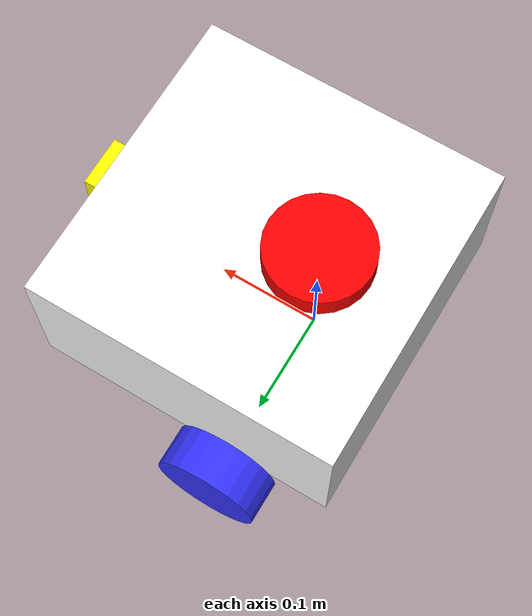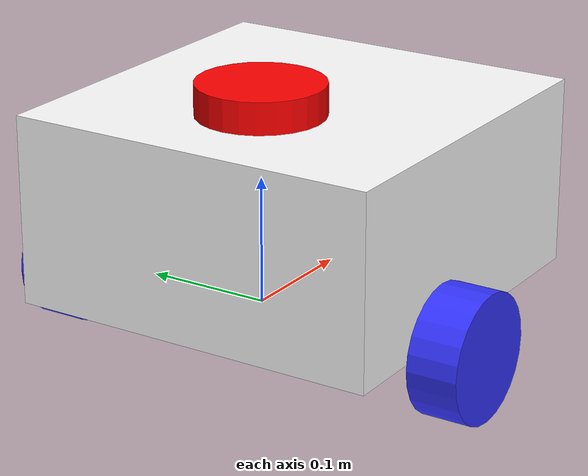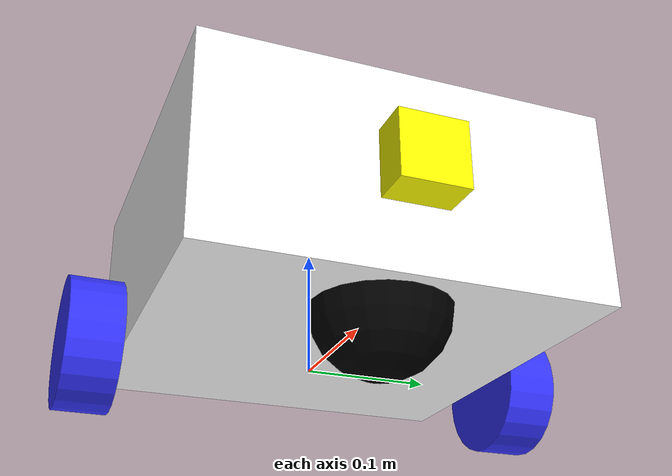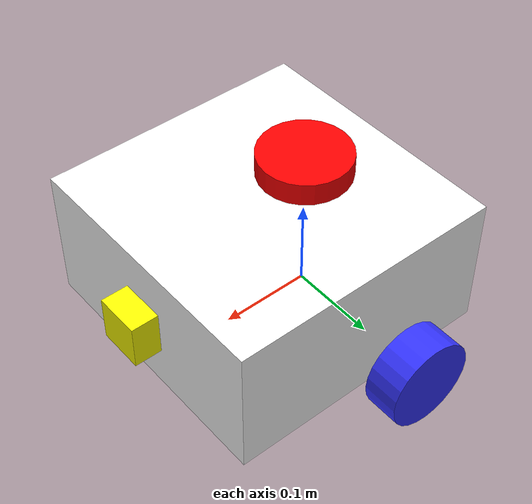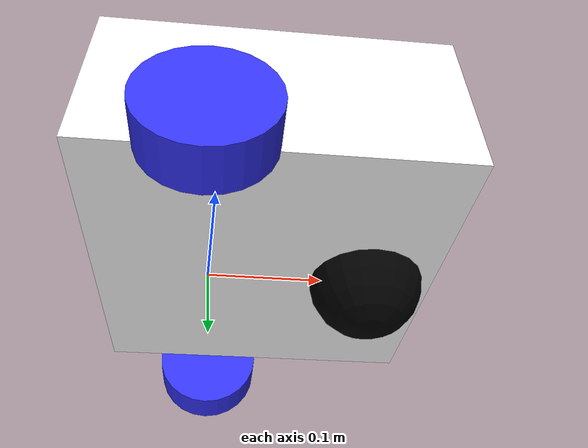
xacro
<?xml version="1.0"?>
<robot xmlns:xacro="http://www.ros.org/wiki/xacro" name="robot">
    <xacro:include filename="colors.xacro" />
    <xacro:include filename="inertial_macros.xacro" />

    <xacro:include filename="robot_core.xacro" />
    <xacro:include filename="lidar.xacro" />
    <xacro:include filename="camera.xacro" />

    <xacro:include filename="gazebo_control.xacro" />
</robot>

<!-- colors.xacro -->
<robot xmlns:xacro="http://www.ros.org/wiki/xacro">

    <material name="white">
        <color rgba="1 1 1 1" />
    </material>

    <material name="orange">
        <color rgba="1 0.3 0.1 1" />
    </material>

    <material name="red">
        <color rgba="1 0 0 1" />
    </material>

    <material name="yellow">
        <color rgba="1 1 0 1" />
    </material>

    <material name="blue">
        <color rgba="0.2 0.2 1 1" />
    </material>

    <material name="black">
        <color rgba="0 0 0 1" />
    </material>
</robot>

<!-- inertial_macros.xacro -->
<robot xmlns:xacro="http://www.ros.org/wiki/xacro">

    <!-- Specify some standard inertial calculations https://en.wikipedia.org/wiki/List_of_moments_of_inertia -->
    <!-- These make use of xacro's mathematical functionality -->

    <xacro:macro name="inertial_sphere" params="mass radius *origin">
        <inertial>
            <xacro:insert_block name="origin" />
            <mass value="${mass}" />
            <inertia ixx="${(2/5) * mass * (radius*radius)}" ixy="0.0" ixz="0.0" iyy="${(2/5) * mass * (radius*radius)}" iyz="0.0" izz="${(2/5) * mass * (radius*radius)}" />
        </inertial>
    </xacro:macro>

    <xacro:macro name="inertial_box" params="mass x y z *origin">
        <inertial>
            <xacro:insert_block name="origin" />
            <mass value="${mass}" />
            <inertia ixx="${(1/12) * mass * (y*y+z*z)}" ixy="0.0" ixz="0.0" iyy="${(1/12) * mass * (x*x+z*z)}" iyz="0.0" izz="${(1/12) * mass * (x*x+y*y)}" />
        </inertial>
    </xacro:macro>

    <xacro:macro name="inertial_cylinder" params="mass length radius *origin">
        <inertial>
            <xacro:insert_block name="origin" />
            <mass value="${mass}" />
            <inertia ixx="${(1/12) * mass * (3*radius*radius + length*length)}" ixy="0.0" ixz="0.0" iyy="${(1/12) * mass * (3*radius*radius + length*length)}" iyz="0.0" izz="${(1/2) * mass * (radius*radius)}" />
        </inertial>
    </xacro:macro>

</robot>

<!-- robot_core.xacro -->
<robot xmlns:xacro="http://www.ros.org/wiki/xacro">

    <link name="base_link"></link>

    <!-- CHASSIS -->
    <xacro:property name="chassis_mass" value="0.5" />
    <xacro:property name="chassis_width" value="0.3" />
    <xacro:property name="chassis_length" value="0.3" />
    <xacro:property name="chassis_height" value="0.15" />

    <joint name="chassis_joint" type="fixed">
        <parent link="base_link" />
        <child link="chassis" />
        <origin xyz="-0.1 0 0" /> <!-- przesuniecie punktu referencyjnego -->

    </joint>

    <link name="chassis">
        <visual>
            <origin xyz="${chassis_width* 0.5} 0 0${chassis_height * 0.5}" rpy="0 0 0" /> <!-- przesuniecie geometrii od punktu referencyjnego, polowa wymiarow jak rzucisz okiem-->
            <geometry>
                <box size="${chassis_width} ${chassis_length} ${chassis_height}" />
            </geometry>
            <material name="white" />
        </visual>

        <collision>
            <origin xyz="0.15 0 0.075" />
            <geometry>
                <box size="${chassis_width} ${chassis_length} ${chassis_height}" />
            </geometry>
        </collision>

        <xacro:inertial_box mass="${chassis_mass}" x="${chassis_width}" y="${chassis_length}" z="${chassis_height}">
            <origin xyz="${chassis_width* 0.5} 0 0${chassis_height * 0.5}" rpy="0 0 0" />
        </xacro:inertial_box>

    </link>

    <!-- gazebo uses different materials/colors than rviz so for correct dispaly requires additional tags -->
    <gazebo reference="chassis">
        <material>Gazebo/White</material>
    </gazebo>

    <!-- WHEELS -->
    <xacro:property name="wheel_mass" value="0.1" />
    <xacro:property name="wheel_length" value="0.04" />
    <xacro:property name="wheel_radius" value="0.05" />

    <!-- LEFT WHEEL -->

    <joint name="left_wheel_joint" type="continuous">
        <parent link="base_link" />
        <child link="left_wheel" />
        <!-- zwroc uwage na kąt, zawsze cylindry obracamy tak by z-axis
             wskazywala na zewnatrz, dlatego musimy zaflipowac znaki na osiach -->
        <origin xyz="0 0.175 0" rpy="-${pi/2} 0 0" />
        <axis xyz="0 0 1" />
    </joint>

    <link name="left_wheel">
        <visual>
            <geometry>
                <cylinder length="${wheel_length}" radius="${wheel_radius}" />
                />
            </geometry>
            <material name="blue" />
        </visual>
        <collision>
            <geometry>
                <cylinder length="${wheel_length}" radius="${wheel_radius}" />
                />
            </geometry>
        </collision>

        <xacro:inertial_cylinder mass="${wheel_mass}" length="${wheel_length}" radius="${wheel_radius}">
            <origin xyz="0 0 0" rpy="0 0 0" />
        </xacro:inertial_cylinder>

    </link>

    <gazebo reference="left_wheel">
        <material>Gazebo/Blue</material>
    </gazebo>

    <!-- RIGHT WHEEL -->

    <joint name="right_wheel_joint" type="continuous">
        <parent link="base_link" />
        <child link="right_wheel" />
        <origin xyz="0 -0.175 0" rpy="${pi/2} 0 0" />
        <axis xyz="0 0 -1" />
    </joint>

    <link name="right_wheel">
        <visual>
            <geometry>
                <cylinder length="${wheel_length}" radius="${wheel_radius}" />
                />
            </geometry>
            <material name="blue" />
        </visual>
        <collision>
            <geometry>
                <cylinder length="${wheel_length}" radius="0.05" />
                />
            </geometry>
        </collision>

        <xacro:inertial_cylinder mass="${wheel_mass}" length="${wheel_length}" radius="${wheel_radius}">
            <origin xyz="0 0 0" rpy="0 0 0" />
        </xacro:inertial_cylinder>

    </link>

    <gazebo reference="right_wheel">
        <material>Gazebo/Blue</material>
    </gazebo>

    <!-- CASTER WHEEL -->
    <xacro:property name="caster_mass" value="0.1" />
    <xacro:property name="caster_radius" value="0.05" />

    <joint name="caster_wheel_joint" type="fixed">
        <parent link="chassis" />
        <child link="caster_wheel" />
        <origin xyz="0.24 0 0" rpy="0 0 0" />
    </joint>

    <link name="caster_wheel">
        <visual>
            <geometry>
                <sphere radius="${caster_radius}" />
            </geometry>
            <material name="black" />
        </visual>
        <collision>
            <geometry>
                <sphere radius="${caster_radius}" />
            </geometry>
        </collision>
        <xacro:inertial_sphere mass="${caster_mass}" radius="${caster_radius}">
            <origin xyz="0 0 0" rpy="0 0 0" />
        </xacro:inertial_sphere>
    </link>

    <gazebo reference="caster_wheel">
        <material>Gazebo/Black</material>
        <mu1 value="0.001" />
        <mu2 value="0.001" />
    </gazebo>

</robot>

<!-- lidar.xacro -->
<robot xmlns:xacro="http://www.ros.org/wiki/xacro">

    <xacro:property name="lidar_mass" value="0.1" />
    <xacro:property name="lidar_length" value="0.04" />
    <xacro:property name="lidar_radius" value="0.05" />

    <joint name="laser_joint" type="fixed">
        <parent link="chassis" />
        <child link="laser_frame" />
        <origin xyz="0.1 0 0.155" rpy="0 0 0" />
    </joint>

    <link name="laser_frame">
        <visual>
            <geometry>
                <cylinder radius="${lidar_radius}" length="${lidar_length}" />
            </geometry>
            <material name="red" />
        </visual>
        <collision>
            <geometry>
                <cylinder radius="${lidar_radius}" length="${lidar_length}" />
            </geometry>
        </collision>
        <xacro:inertial_cylinder mass="${lidar_mass}" length="${lidar_radius}" radius="${lidar_length}">
            <origin xyz="0 0 0" rpy="0 0 0" />
        </xacro:inertial_cylinder>
    </link>

    <gazebo reference="laser_frame">

        <material>Gazebo/Red</material>

        <sensor name="laser" type="ray">
            <pose> 0 0 0 0 0 0 </pose>
            <visualize>true</visualize>
            <update_rate>10</update_rate>

            <!-- parameters for simulated sensor, should be as similar
                as possible to real object-->
            <ray>
                <scan>
                    <horizontal>
                        <samples>360</samples>
                        <min_angle>-3.14</min_angle>
                        <max_angle>3.14</max_angle>
                    </horizontal>
                </scan>
                <range>
                    <min>0.3</min>
                    <max>12</max>
                </range>
            </ray>

            <plugin name="laser_controller" filename="libgazebo_ros_ray_sensor.so">
                <ros>
                    <argument>~/out:=scan</argument>
                </ros>
                <output_type>sensor_msgs/LaserScan</output_type>
                <frame_name>laser_frame</frame_name>
            </plugin>

        </sensor>
    </gazebo>

</robot>

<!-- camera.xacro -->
<robot xmlns:xacro="http://www.ros.org/wiki/xacro">

    <xacro:property name="camera_mass" value="0.05" />
    <xacro:property name="camera_width" value="0.03" />
    <xacro:property name="camera_length" value="0.05" />
    <xacro:property name="camera_height" value="0.05" />

    <joint name="camera_joint" type="fixed">
        <parent link="chassis" />
        <child link="camera_frame" />
        <origin xyz="${chassis_width + camera_width}  0 ${chassis_height * 0.5}" rpy="0 0 0" /> <!-- przesuniecie punktu referencyjnego, który domyślnie jest w środku geometrii-->
    </joint>

    <link name="camera_frame">
        <visual>
            <!-- najwyrazniej kamera generuje obraz od swojego refernece point, dlatego takie przesuniecie -->
            <origin xyz="${-camera_width * 0.5} 0 0" rpy="0 0 0" /> <!-- przesuniecie geometrii od punktu referencyjnego, polowa wymiarow jak rzucisz okiem-->
            <geometry>
                <box size="${camera_width} ${camera_length} ${camera_height}" />
            </geometry>
            <material name="yellow" />
        </visual>

        <collision>
            <geometry>
                <box size="${camera_width} ${camera_length} ${camera_height}" />
            </geometry>
        </collision>

        <xacro:inertial_box mass="${camera_mass}" x="${camera_width}" y="${camera_length}" z="${camera_height}">
            <origin xyz="${camera_width * 0.5} 0 ${camera_height * 0.5}" rpy="0 0 0" />
        </xacro:inertial_box>
    </link>

    <gazebo reference="camera_frame">

        <material>Gazebo/Yellow</material>

        <sensor name="camera" type="camera">

            <!-- parameters for simulated sensor, should be as similar
                as possible to real object-->

            <camera>
                <horizontal_fov>1.047</horizontal_fov>
                <image>
                    <width>320</width>
                    <height>240</height>
                </image>
                <clip>
                    <near>0.1</near>
                    <far>100</far>
                </clip>
            </camera>
            <always_on>1</always_on>
            <update_rate>30</update_rate>
            <visualize>true</visualize>

            <plugin name="camera_controller" filename="libgazebo_ros_camera.so">
                <alwaysOn>true</alwaysOn>
                <updateRate>0.0</updateRate>
                <cameraName>camera</cameraName>
                <imageTopicName>image_raw</imageTopicName>
                <cameraInfoTopicName>camera_info</cameraInfoTopicName>
                <frameName>camera_link_optical</frameName>
                <!-- setting hackBaseline to anything but 0.0 will cause a misalignment
                         between the gazebo sensor image and the frame it is supposed to
                         be attached to -->
                <hackBaseline>0.0</hackBaseline>
                <distortionK1>0.0</distortionK1>
                <distortionK2>0.0</distortionK2>
                <distortionK3>0.0</distortionK3>
                <distortionT1>0.0</distortionT1>
                <distortionT2>0.0</distortionT2>
                <CxPrime>0</CxPrime>
                <Cx>0.0</Cx>
                <Cy>0.0</Cy>
                <focalLength>0.0</focalLength>
            </plugin>

        </sensor>

    </gazebo>

</robot>
